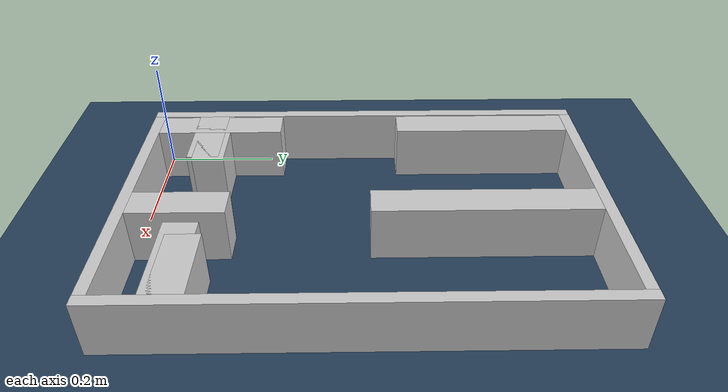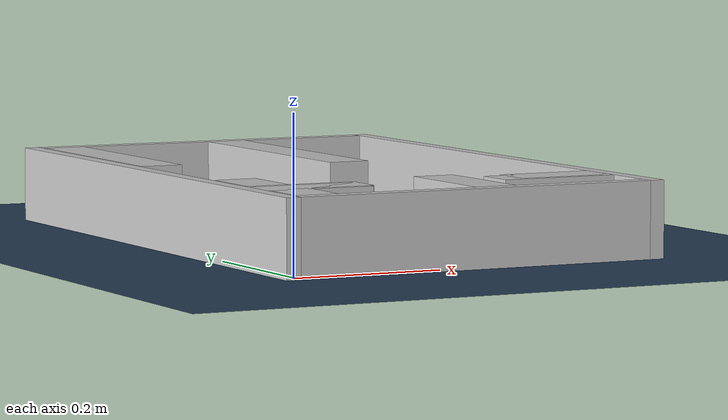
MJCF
<?xml version="1.0" ?>
<mujoco model="generated_real_template">
  <compiler angle="degree"/>
  <option timestep="0.002" integrator="implicitfast" iterations="100" cone="elliptic"/>
  <default>
    <geom density="1"/>
  </default>
  <asset>
    <texture builtin="gradient" height="3072" rgb1="0.3 0.5 0.7" rgb2="0 0 0" type="skybox" width="512"/>
    <texture builtin="checker" height="300" mark="edge" markrgb="0.8 0.8 0.8" name="groundplane" rgb1="0.2 0.3 0.4" rgb2="0.1 0.2 0.3" type="2d" width="300"/>
    <material name="groundplane" reflectance="0.2" texrepeat="5 5" texture="groundplane" texuniform="true"/>
  </asset>
  <worldbody>
    <light dir="0 0 -1" directional="true" pos="0 0 1.5"/>
    <geom name="floor" type="plane" condim="4" friction="0.5 0.005 0.001" material="groundplane" size="0 0 0.05"/>
    <body name="walls">
      <geom name="wall_boundary_left" type="box" condim="4" friction="1.0 0.005 0.0001" rgba="0.8 0.8 0.8 1" pos="-0.010000 0.387500 0.050000" euler="0 0 0.000000" size="0.010000 0.407500 0.050000"/>
      <geom name="wall_boundary_right" type="box" condim="4" friction="1.0 0.005 0.0001" rgba="0.8 0.8 0.8 1" pos="0.500000 0.387500 0.050000" euler="0 0 0.000000" size="0.010000 0.407500 0.050000"/>
      <geom name="wall_boundary_bottom" type="box" condim="4" friction="1.0 0.005 0.0001" rgba="0.8 0.8 0.8 1" pos="0.245000 -0.010000 0.050000" euler="0 0 0.000000" size="0.245000 0.010000 0.050000"/>
      <geom name="wall_boundary_top" type="box" condim="4" friction="1.0 0.005 0.0001" rgba="0.8 0.8 0.8 1" pos="0.245000 0.785000 0.050000" euler="0 0 0.000000" size="0.245000 0.010000 0.050000"/>
      <geom name="wall_inner_1_1" type="box" condim="4" friction="1.0 0.005 0.0001" rgba="0.8 0.8 0.8 1" pos="0.031874 0.115235 0.050000" euler="0 0 90.000000" size="0.115235 0.028500 0.050000"/>
      <geom name="wall_inner_1_2" type="box" condim="4" friction="1.0 0.005 0.0001" rgba="0.8 0.8 0.8 1" pos="0.031874 0.613556 0.050000" euler="0 0 90.000000" size="0.161444 0.028500 0.050000"/>
      <geom name="wall_inner_2_1" type="box" condim="4" friction="1.0 0.005 0.0001" rgba="0.8 0.8 0.8 1" pos="0.278855 0.081256 0.050000" euler="0 0 90.000000" size="0.081256 0.028500 0.050000"/>
      <geom name="wall_inner_2_2" type="box" condim="4" friction="1.0 0.005 0.0001" rgba="0.8 0.8 0.8 1" pos="0.278855 0.585884 0.050000" euler="0 0 90.000000" size="0.189116 0.028500 0.050000"/>
      <geom name="wall_inner_3_1" type="box" condim="4" friction="1.0 0.005 0.0001" rgba="0.8 0.8 0.8 1" pos="0.074993 0.106898 0.050000" euler="0 0 0.000000" size="0.074993 0.028500 0.050000"/>
      <geom name="wall_inner_3_2" type="box" condim="4" friction="1.0 0.005 0.0001" rgba="0.8 0.8 0.8 1" pos="0.425137 0.106898 0.050000" euler="0 0 0.000000" size="0.064863 0.028500 0.050000"/>
      <geom name="wall_inner_4_1" type="box" condim="4" friction="1.0 0.005 0.0001" rgba="0.8 0.8 0.8 1" pos="0.072069 0.097055 0.050000" euler="0 0 0.000000" size="0.072069 0.028500 0.050000"/>
      <geom name="wall_inner_4_2" type="box" condim="4" friction="1.0 0.005 0.0001" rgba="0.8 0.8 0.8 1" pos="0.410593 0.097055 0.050000" euler="0 0 0.000000" size="0.079407 0.028500 0.050000"/>
    </body>
  </worldbody>
</mujoco>
